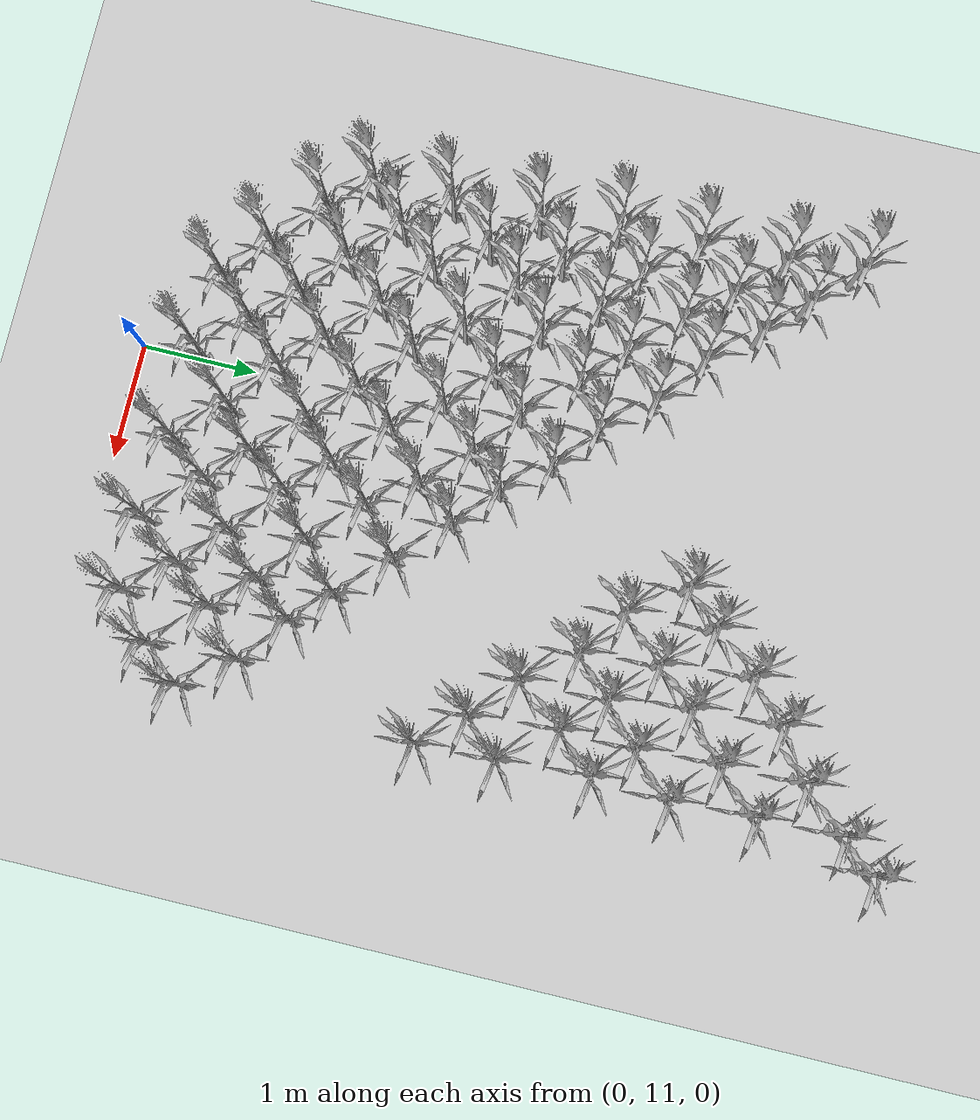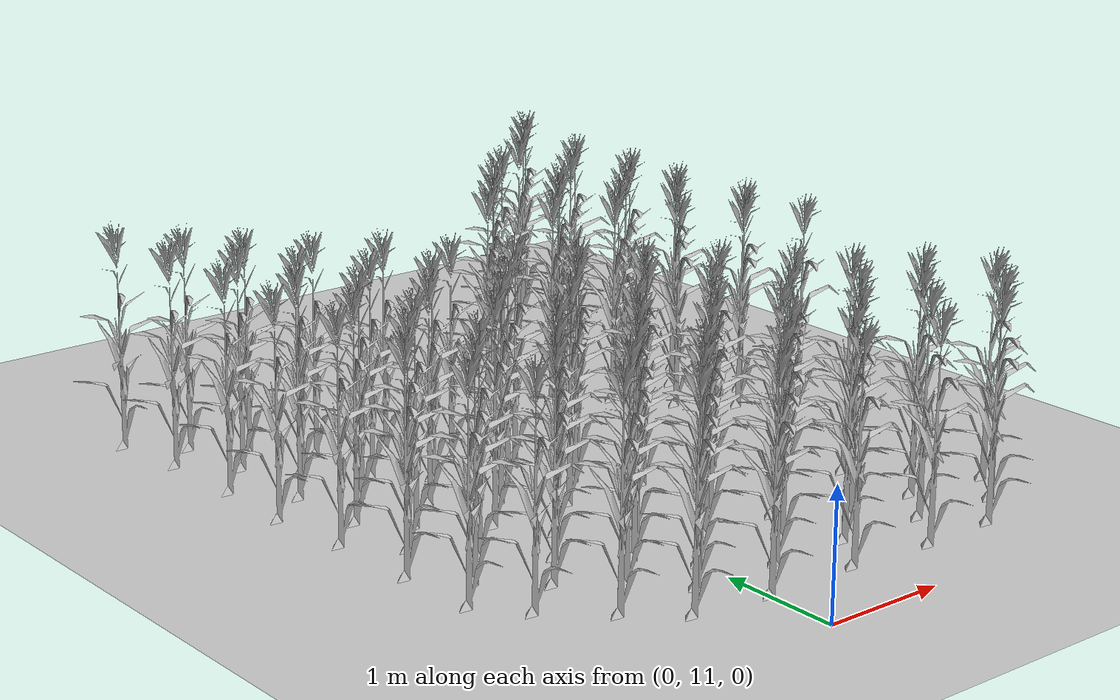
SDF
<sdf version="1.7">
 <world name="farmland_world">
  <model name="ground_plane">
   <static>1</static>
   <link name="link">
    <collision name="collision">
     <geometry><plane><normal>0 0 1</normal><size>40.0 40.0</size></plane></geometry>
     <surface><friction><ode><mu>100</mu><mu2>50</mu2></ode></friction></surface>
    </collision>
    <visual name="visual">
     <cast_shadows>0</cast_shadows>
     <geometry><plane><normal>0 0 1</normal><size>40.0 40.0</size></plane></geometry>
     <material>
      <script><uri>file://media/materials/scripts/gazebo.material</uri><name>Gazebo/Grey</name></script>
     </material>
    </visual>
   </link>
  </model>
  <model name="tree_3_326">
   <static>1</static>
   <link name="link">
    <collision name="collision">
     <geometry><mesh><uri>model://Corn_low_poly/corn.obj</uri><scale>1 1 1</scale></mesh></geometry>
     <surface><friction><ode><mu>100</mu><mu2>50</mu2></ode></friction></surface>
    </collision>
    <visual name="visual">
     <geometry><mesh><uri>model://Corn_low_poly/corn.obj</uri><scale>1 1 1</scale></mesh></geometry>
    </visual>
   </link>
   <pose>-0.6159914897354487 11.680217431769517 0 0 0 0</pose>
  </model>
  <model name="tree_3_327">
   <static>1</static>
   <link name="link">
    <collision name="collision">
     <geometry><mesh><uri>model://Corn_low_poly/corn.obj</uri><scale>1 1 1</scale></mesh></geometry>
     <surface><friction><ode><mu>100</mu><mu2>50</mu2></ode></friction></surface>
    </collision>
    <visual name="visual">
     <geometry><mesh><uri>model://Corn_low_poly/corn.obj</uri><scale>1 1 1</scale></mesh></geometry>
    </visual>
   </link>
   <pose>-0.9890234954285126 12.001630813378753 0 0 0 0</pose>
  </model>
  <model name="tree_3_328">
   <static>1</static>
   <link name="link">
    <collision name="collision">
     <geometry><mesh><uri>model://Corn_low_poly/corn.obj</uri><scale>1 1 1</scale></mesh></geometry>
     <surface><friction><ode><mu>100</mu><mu2>50</mu2></ode></friction></surface>
    </collision>
    <visual name="visual">
     <geometry><mesh><uri>model://Corn_low_poly/corn.obj</uri><scale>1 1 1</scale></mesh></geometry>
    </visual>
   </link>
   <pose>-1.4118398866824176 12.382378868817657 0 0 0 0</pose>
  </model>
  <model name="tree_3_329">
   <static>1</static>
   <link name="link">
    <collision name="collision">
     <geometry><mesh><uri>model://Corn_low_poly/corn.obj</uri><scale>1 1 1</scale></mesh></geometry>
     <surface><friction><ode><mu>100</mu><mu2>50</mu2></ode></friction></surface>
    </collision>
    <visual name="visual">
     <geometry><mesh><uri>model://Corn_low_poly/corn.obj</uri><scale>1 1 1</scale></mesh></geometry>
    </visual>
   </link>
   <pose>-1.6921558482962555 12.736218034763247 0 0 0 0</pose>
  </model>
  <model name="tree_3_370">
   <static>1</static>
   <link name="link">
    <collision name="collision">
     <geometry><mesh><uri>model://Corn_low_poly/corn.obj</uri><scale>1 1 1</scale></mesh></geometry>
     <surface><friction><ode><mu>100</mu><mu2>50</mu2></ode></friction></surface>
    </collision>
    <visual name="visual">
     <geometry><mesh><uri>model://Corn_low_poly/corn.obj</uri><scale>1 1 1</scale></mesh></geometry>
    </visual>
   </link>
   <pose>0.010287536532261998 11.59109692468479 0 0 0 0</pose>
  </model>
  <model name="tree_3_371">
   <static>1</static>
   <link name="link">
    <collision name="collision">
     <geometry><mesh><uri>model://Corn_low_poly/corn.obj</uri><scale>1 1 1</scale></mesh></geometry>
     <surface><friction><ode><mu>100</mu><mu2>50</mu2></ode></friction></surface>
    </collision>
    <visual name="visual">
     <geometry><mesh><uri>model://Corn_low_poly/corn.obj</uri><scale>1 1 1</scale></mesh></geometry>
    </visual>
   </link>
   <pose>-0.28463956660514067 12.014626489545961 0 0 0 0</pose>
  </model>
  <model name="tree_3_372">
   <static>1</static>
   <link name="link">
    <collision name="collision">
     <geometry><mesh><uri>model://Corn_low_poly/corn.obj</uri><scale>1 1 1</scale></mesh></geometry>
     <surface><friction><ode><mu>100</mu><mu2>50</mu2></ode></friction></surface>
    </collision>
    <visual name="visual">
     <geometry><mesh><uri>model://Corn_low_poly/corn.obj</uri><scale>1 1 1</scale></mesh></geometry>
    </visual>
   </link>
   <pose>-0.6369787297962994 12.342699216143531 0 0 0 0</pose>
  </model>
  <model name="tree_3_373">
   <static>1</static>
   <link name="link">
    <collision name="collision">
     <geometry><mesh><uri>model://Corn_low_poly/corn.obj</uri><scale>1 1 1</scale></mesh></geometry>
     <surface><friction><ode><mu>100</mu><mu2>50</mu2></ode></friction></surface>
    </collision>
    <visual name="visual">
     <geometry><mesh><uri>model://Corn_low_poly/corn.obj</uri><scale>1 1 1</scale></mesh></geometry>
    </visual>
   </link>
   <pose>-1.017438732129421 12.661966391335348 0 0 0 0</pose>
  </model>
  <model name="tree_3_374">
   <static>1</static>
   <link name="link">
    <collision name="collision">
     <geometry><mesh><uri>model://Corn_low_poly/corn.obj</uri><scale>1 1 1</scale></mesh></geometry>
     <surface><friction><ode><mu>100</mu><mu2>50</mu2></ode></friction></surface>
    </collision>
    <visual name="visual">
     <geometry><mesh><uri>model://Corn_low_poly/corn.obj</uri><scale>1 1 1</scale></mesh></geometry>
    </visual>
   </link>
   <pose>-1.4129287246045454 13.029988537906739 0 0 0 0</pose>
  </model>
  <model name="tree_3_375">
   <static>1</static>
   <link name="link">
    <collision name="collision">
     <geometry><mesh><uri>model://Corn_low_poly/corn.obj</uri><scale>1 1 1</scale></mesh></geometry>
     <surface><friction><ode><mu>100</mu><mu2>50</mu2></ode></friction></surface>
    </collision>
    <visual name="visual">
     <geometry><mesh><uri>model://Corn_low_poly/corn.obj</uri><scale>1 1 1</scale></mesh></geometry>
    </visual>
   </link>
   <pose>-1.7224924573897185 13.397468671116005 0 0 0 0</pose>
  </model>
  <model name="tree_3_414">
   <static>1</static>
   <link name="link">
    <collision name="collision">
     <geometry><mesh><uri>model://Corn_low_poly/corn.obj</uri><scale>1 1 1</scale></mesh></geometry>
     <surface><friction><ode><mu>100</mu><mu2>50</mu2></ode></friction></surface>
    </collision>
    <visual name="visual">
     <geometry><mesh><uri>model://Corn_low_poly/corn.obj</uri><scale>1 1 1</scale></mesh></geometry>
    </visual>
   </link>
   <pose>0.8001938802256726 11.584543198587747 0 0 0 0</pose>
  </model>
  <model name="tree_3_415">
   <static>1</static>
   <link name="link">
    <collision name="collision">
     <geometry><mesh><uri>model://Corn_low_poly/corn.obj</uri><scale>1 1 1</scale></mesh></geometry>
     <surface><friction><ode><mu>100</mu><mu2>50</mu2></ode></friction></surface>
    </collision>
    <visual name="visual">
     <geometry><mesh><uri>model://Corn_low_poly/corn.obj</uri><scale>1 1 1</scale></mesh></geometry>
    </visual>
   </link>
   <pose>0.4262494697378442 11.975883905332177 0 0 0 0</pose>
  </model>
  <model name="tree_3_416">
   <static>1</static>
   <link name="link">
    <collision name="collision">
     <geometry><mesh><uri>model://Corn_low_poly/corn.obj</uri><scale>1 1 1</scale></mesh></geometry>
     <surface><friction><ode><mu>100</mu><mu2>50</mu2></ode></friction></surface>
    </collision>
    <visual name="visual">
     <geometry><mesh><uri>model://Corn_low_poly/corn.obj</uri><scale>1 1 1</scale></mesh></geometry>
    </visual>
   </link>
   <pose>0.0023708934907775148 12.307366250514272 0 0 0 0</pose>
  </model>
  <model name="tree_3_417">
   <static>1</static>
   <link name="link">
    <collision name="collision">
     <geometry><mesh><uri>model://Corn_low_poly/corn.obj</uri><scale>1 1 1</scale></mesh></geometry>
     <surface><friction><ode><mu>100</mu><mu2>50</mu2></ode></friction></surface>
    </collision>
    <visual name="visual">
     <geometry><mesh><uri>model://Corn_low_poly/corn.obj</uri><scale>1 1 1</scale></mesh></geometry>
    </visual>
   </link>
   <pose>-0.29432599244462426 12.658529436605455 0 0 0 0</pose>
  </model>
  <model name="tree_3_418">
   <static>1</static>
   <link name="link">
    <collision name="collision">
     <geometry><mesh><uri>model://Corn_low_poly/corn.obj</uri><scale>1 1 1</scale></mesh></geometry>
     <surface><friction><ode><mu>100</mu><mu2>50</mu2></ode></friction></surface>
    </collision>
    <visual name="visual">
     <geometry><mesh><uri>model://Corn_low_poly/corn.obj</uri><scale>1 1 1</scale></mesh></geometry>
    </visual>
   </link>
   <pose>-0.7112974712343889 13.023271907194369 0 0 0 0</pose>
  </model>
  <model name="tree_3_419">
   <static>1</static>
   <link name="link">
    <collision name="collision">
     <geometry><mesh><uri>model://Corn_low_poly/corn.obj</uri><scale>1 1 1</scale></mesh></geometry>
     <surface><friction><ode><mu>100</mu><mu2>50</mu2></ode></friction></surface>
    </collision>
    <visual name="visual">
     <geometry><mesh><uri>model://Corn_low_poly/corn.obj</uri><scale>1 1 1</scale></mesh></geometry>
    </visual>
   </link>
   <pose>-1.1037884333144026 13.384269066660135 0 0 0 0</pose>
  </model>
  <model name="tree_3_420">
   <static>1</static>
   <link name="link">
    <collision name="collision">
     <geometry><mesh><uri>model://Corn_low_poly/corn.obj</uri><scale>1 1 1</scale></mesh></geometry>
     <surface><friction><ode><mu>100</mu><mu2>50</mu2></ode></friction></surface>
    </collision>
    <visual name="visual">
     <geometry><mesh><uri>model://Corn_low_poly/corn.obj</uri><scale>1 1 1</scale></mesh></geometry>
    </visual>
   </link>
   <pose>-1.414597317762616 13.793382301832116 0 0 0 0</pose>
  </model>
  <model name="tree_3_421">
   <static>1</static>
   <link name="link">
    <collision name="collision">
     <geometry><mesh><uri>model://Corn_low_poly/corn.obj</uri><scale>1 1 1</scale></mesh></geometry>
     <surface><friction><ode><mu>100</mu><mu2>50</mu2></ode></friction></surface>
    </collision>
    <visual name="visual">
     <geometry><mesh><uri>model://Corn_low_poly/corn.obj</uri><scale>1 1 1</scale></mesh></geometry>
    </visual>
   </link>
   <pose>-1.7481367978398707 14.156822416482086 0 0 0 0</pose>
  </model>
  <model name="tree_3_458">
   <static>1</static>
   <link name="link">
    <collision name="collision">
     <geometry><mesh><uri>model://Corn_low_poly/corn.obj</uri><scale>1 1 1</scale></mesh></geometry>
     <surface><friction><ode><mu>100</mu><mu2>50</mu2></ode></friction></surface>
    </collision>
    <visual name="visual">
     <geometry><mesh><uri>model://Corn_low_poly/corn.obj</uri><scale>1 1 1</scale></mesh></geometry>
    </visual>
   </link>
   <pose>1.5034296016191822 11.517823892175608 0 0 0 0</pose>
  </model>
  <model name="tree_3_459">
   <static>1</static>
   <link name="link">
    <collision name="collision">
     <geometry><mesh><uri>model://Corn_low_poly/corn.obj</uri><scale>1 1 1</scale></mesh></geometry>
     <surface><friction><ode><mu>100</mu><mu2>50</mu2></ode></friction></surface>
    </collision>
    <visual name="visual">
     <geometry><mesh><uri>model://Corn_low_poly/corn.obj</uri><scale>1 1 1</scale></mesh></geometry>
    </visual>
   </link>
   <pose>1.0846571910192582 11.954144643541778 0 0 0 0</pose>
  </model>
  <model name="tree_3_460">
   <static>1</static>
   <link name="link">
    <collision name="collision">
     <geometry><mesh><uri>model://Corn_low_poly/corn.obj</uri><scale>1 1 1</scale></mesh></geometry>
     <surface><friction><ode><mu>100</mu><mu2>50</mu2></ode></friction></surface>
    </collision>
    <visual name="visual">
     <geometry><mesh><uri>model://Corn_low_poly/corn.obj</uri><scale>1 1 1</scale></mesh></geometry>
    </visual>
   </link>
   <pose>0.775334976136647 12.272745347312874 0 0 0 0</pose>
  </model>
  <model name="tree_3_461">
   <static>1</static>
   <link name="link">
    <collision name="collision">
     <geometry><mesh><uri>model://Corn_low_poly/corn.obj</uri><scale>1 1 1</scale></mesh></geometry>
     <surface><friction><ode><mu>100</mu><mu2>50</mu2></ode></friction></surface>
    </collision>
    <visual name="visual">
     <geometry><mesh><uri>model://Corn_low_poly/corn.obj</uri><scale>1 1 1</scale></mesh></geometry>
    </visual>
   </link>
   <pose>0.3955211941019991 12.6731199798251 0 0 0 0</pose>
  </model>
  <model name="tree_3_462">
   <static>1</static>
   <link name="link">
    <collision name="collision">
     <geometry><mesh><uri>model://Corn_low_poly/corn.obj</uri><scale>1 1 1</scale></mesh></geometry>
     <surface><friction><ode><mu>100</mu><mu2>50</mu2></ode></friction></surface>
    </collision>
    <visual name="visual">
     <geometry><mesh><uri>model://Corn_low_poly/corn.obj</uri><scale>1 1 1</scale></mesh></geometry>
    </visual>
   </link>
   <pose>0.039334488339589024 13.016876013982255 0 0 0 0</pose>
  </model>
  <model name="tree_3_463">
   <static>1</static>
   <link name="link">
    <collision name="collision">
     <geometry><mesh><uri>model://Corn_low_poly/corn.obj</uri><scale>1 1 1</scale></mesh></geometry>
     <surface><friction><ode><mu>100</mu><mu2>50</mu2></ode></friction></surface>
    </collision>
    <visual name="visual">
     <geometry><mesh><uri>model://Corn_low_poly/corn.obj</uri><scale>1 1 1</scale></mesh></geometry>
    </visual>
   </link>
   <pose>-0.4132186261781491 13.370093568406078 0 0 0 0</pose>
  </model>
  <model name="tree_3_464">
   <static>1</static>
   <link name="link">
    <collision name="collision">
     <geometry><mesh><uri>model://Corn_low_poly/corn.obj</uri><scale>1 1 1</scale></mesh></geometry>
     <surface><friction><ode><mu>100</mu><mu2>50</mu2></ode></friction></surface>
    </collision>
    <visual name="visual">
     <geometry><mesh><uri>model://Corn_low_poly/corn.obj</uri><scale>1 1 1</scale></mesh></geometry>
    </visual>
   </link>
   <pose>-0.6782682979751039 13.750969651093932 0 0 0 0</pose>
  </model>
  <model name="tree_3_465">
   <static>1</static>
   <link name="link">
    <collision name="collision">
     <geometry><mesh><uri>model://Corn_low_poly/corn.obj</uri><scale>1 1 1</scale></mesh></geometry>
     <surface><friction><ode><mu>100</mu><mu2>50</mu2></ode></friction></surface>
    </collision>
    <visual name="visual">
     <geometry><mesh><uri>model://Corn_low_poly/corn.obj</uri><scale>1 1 1</scale></mesh></geometry>
    </visual>
   </link>
   <pose>-1.1248794120916252 14.101495868032165 0 0 0 0</pose>
  </model>
  <model name="tree_3_466">
   <static>1</static>
   <link name="link">
    <collision name="collision">
     <geometry><mesh><uri>model://Corn_low_poly/corn.obj</uri><scale>1 1 1</scale></mesh></geometry>
     <surface><friction><ode><mu>100</mu><mu2>50</mu2></ode></friction></surface>
    </collision>
    <visual name="visual">
     <geometry><mesh><uri>model://Corn_low_poly/corn.obj</uri><scale>1 1 1</scale></mesh></geometry>
    </visual>
   </link>
   <pose>-1.4199158666461857 14.433036442992657 0 0 0 0</pose>
  </model>
  <model name="tree_3_467">
   <static>1</static>
   <link name="link">
    <collision name="collision">
     <geometry><mesh><uri>model://Corn_low_poly/corn.obj</uri><scale>1 1 1</scale></mesh></geometry>
     <surface><friction><ode><mu>100</mu><mu2>50</mu2></ode></friction></surface>
    </collision>
    <visual name="visual">
     <geometry><mesh><uri>model://Corn_low_poly/corn.obj</uri><scale>1 1 1</scale></mesh></geometry>
    </visual>
   </link>
   <pose>-1.824638998192062 14.832478031824156 0 0 0 0</pose>
  </model>
  <model name="tree_3_502">
   <static>1</static>
   <link name="link">
    <collision name="collision">
     <geometry><mesh><uri>model://Corn_low_poly/corn.obj</uri><scale>1 1 1</scale></mesh></geometry>
     <surface><friction><ode><mu>100</mu><mu2>50</mu2></ode></friction></surface>
    </collision>
    <visual name="visual">
     <geometry><mesh><uri>model://Corn_low_poly/corn.obj</uri><scale>1 1 1</scale></mesh></geometry>
    </visual>
   </link>
   <pose>2.1421573945072017 11.532903663875013 0 0 0 0</pose>
  </model>
  <model name="tree_3_503">
   <static>1</static>
   <link name="link">
    <collision name="collision">
     <geometry><mesh><uri>model://Corn_low_poly/corn.obj</uri><scale>1 1 1</scale></mesh></geometry>
     <surface><friction><ode><mu>100</mu><mu2>50</mu2></ode></friction></surface>
    </collision>
    <visual name="visual">
     <geometry><mesh><uri>model://Corn_low_poly/corn.obj</uri><scale>1 1 1</scale></mesh></geometry>
    </visual>
   </link>
   <pose>1.822172042115392 11.91529433579827 0 0 0 0</pose>
  </model>
  <model name="tree_3_504">
   <static>1</static>
   <link name="link">
    <collision name="collision">
     <geometry><mesh><uri>model://Corn_low_poly/corn.obj</uri><scale>1 1 1</scale></mesh></geometry>
     <surface><friction><ode><mu>100</mu><mu2>50</mu2></ode></friction></surface>
    </collision>
    <visual name="visual">
     <geometry><mesh><uri>model://Corn_low_poly/corn.obj</uri><scale>1 1 1</scale></mesh></geometry>
    </visual>
   </link>
   <pose>1.452076636833405 12.249702156134537 0 0 0 0</pose>
  </model>
  <model name="tree_3_505">
   <static>1</static>
   <link name="link">
    <collision name="collision">
     <geometry><mesh><uri>model://Corn_low_poly/corn.obj</uri><scale>1 1 1</scale></mesh></geometry>
     <surface><friction><ode><mu>100</mu><mu2>50</mu2></ode></friction></surface>
    </collision>
    <visual name="visual">
     <geometry><mesh><uri>model://Corn_low_poly/corn.obj</uri><scale>1 1 1</scale></mesh></geometry>
    </visual>
   </link>
   <pose>1.0241584675379398 12.62303748326177 0 0 0 0</pose>
  </model>
  <model name="tree_3_506">
   <static>1</static>
   <link name="link">
    <collision name="collision">
     <geometry><mesh><uri>model://Corn_low_poly/corn.obj</uri><scale>1 1 1</scale></mesh></geometry>
     <surface><friction><ode><mu>100</mu><mu2>50</mu2></ode></friction></surface>
    </collision>
    <visual name="visual">
     <geometry><mesh><uri>model://Corn_low_poly/corn.obj</uri><scale>1 1 1</scale></mesh></geometry>
    </visual>
   </link>
   <pose>0.7109389303994903 12.959190232195107 0 0 0 0</pose>
  </model>
  <model name="tree_3_507">
   <static>1</static>
   <link name="link">
    <collision name="collision">
     <geometry><mesh><uri>model://Corn_low_poly/corn.obj</uri><scale>1 1 1</scale></mesh></geometry>
     <surface><friction><ode><mu>100</mu><mu2>50</mu2></ode></friction></surface>
    </collision>
    <visual name="visual">
     <geometry><mesh><uri>model://Corn_low_poly/corn.obj</uri><scale>1 1 1</scale></mesh></geometry>
    </visual>
   </link>
   <pose>0.30180475302765986 13.355495992437293 0 0 0 0</pose>
  </model>
  <model name="tree_3_508">
   <static>1</static>
   <link name="link">
    <collision name="collision">
     <geometry><mesh><uri>model://Corn_low_poly/corn.obj</uri><scale>1 1 1</scale></mesh></geometry>
     <surface><friction><ode><mu>100</mu><mu2>50</mu2></ode></friction></surface>
    </collision>
    <visual name="visual">
     <geometry><mesh><uri>model://Corn_low_poly/corn.obj</uri><scale>1 1 1</scale></mesh></geometry>
    </visual>
   </link>
   <pose>0.014706866242820443 13.743535312180269 0 0 0 0</pose>
  </model>
  <model name="tree_3_509">
   <static>1</static>
   <link name="link">
    <collision name="collision">
     <geometry><mesh><uri>model://Corn_low_poly/corn.obj</uri><scale>1 1 1</scale></mesh></geometry>
     <surface><friction><ode><mu>100</mu><mu2>50</mu2></ode></friction></surface>
    </collision>
    <visual name="visual">
     <geometry><mesh><uri>model://Corn_low_poly/corn.obj</uri><scale>1 1 1</scale></mesh></geometry>
    </visual>
   </link>
   <pose>-0.3484834164229018 14.096321077568588 0 0 0 0</pose>
  </model>
  <model name="tree_3_510">
   <static>1</static>
   <link name="link">
    <collision name="collision">
     <geometry><mesh><uri>model://Corn_low_poly/corn.obj</uri><scale>1 1 1</scale></mesh></geometry>
     <surface><friction><ode><mu>100</mu><mu2>50</mu2></ode></friction></surface>
    </collision>
    <visual name="visual">
     <geometry><mesh><uri>model://Corn_low_poly/corn.obj</uri><scale>1 1 1</scale></mesh></geometry>
    </visual>
   </link>
   <pose>-0.786927035958017 14.390955471815523 0 0 0 0</pose>
  </model>
  <model name="tree_3_511">
   <static>1</static>
   <link name="link">
    <collision name="collision">
     <geometry><mesh><uri>model://Corn_low_poly/corn.obj</uri><scale>1 1 1</scale></mesh></geometry>
     <surface><friction><ode><mu>100</mu><mu2>50</mu2></ode></friction></surface>
    </collision>
    <visual name="visual">
     <geometry><mesh><uri>model://Corn_low_poly/corn.obj</uri><scale>1 1 1</scale></mesh></geometry>
    </visual>
   </link>
   <pose>-1.0983432946171343 14.82376691203676 0 0 0 0</pose>
  </model>
  <model name="tree_3_512">
   <static>1</static>
   <link name="link">
    <collision name="collision">
     <geometry><mesh><uri>model://Corn_low_poly/corn.obj</uri><scale>1 1 1</scale></mesh></geometry>
     <surface><friction><ode><mu>100</mu><mu2>50</mu2></ode></friction></surface>
    </collision>
    <visual name="visual">
     <geometry><mesh><uri>model://Corn_low_poly/corn.obj</uri><scale>1 1 1</scale></mesh></geometry>
    </visual>
   </link>
   <pose>-1.4620173127776088 15.100944774924221 0 0 0 0</pose>
  </model>
  <model name="tree_3_513">
   <static>1</static>
   <link name="link">
    <collision name="collision">
     <geometry><mesh><uri>model://Corn_low_poly/corn.obj</uri><scale>1 1 1</scale></mesh></geometry>
     <surface><friction><ode><mu>100</mu><mu2>50</mu2></ode></friction></surface>
    </collision>
    <visual name="visual">
     <geometry><mesh><uri>model://Corn_low_poly/corn.obj</uri><scale>1 1 1</scale></mesh></geometry>
    </visual>
   </link>
   <pose>-1.808006717191148 15.524565194988822 0 0 0 0</pose>
  </model>
  <model name="tree_3_547">
   <static>1</static>
   <link name="link">
    <collision name="collision">
     <geometry><mesh><uri>model://Corn_low_poly/corn.obj</uri><scale>1 1 1</scale></mesh></geometry>
     <surface><friction><ode><mu>100</mu><mu2>50</mu2></ode></friction></surface>
    </collision>
    <visual name="visual">
     <geometry><mesh><uri>model://Corn_low_poly/corn.obj</uri><scale>1 1 1</scale></mesh></geometry>
    </visual>
   </link>
   <pose>2.520323327306591 11.84290591334607 0 0 0 0</pose>
  </model>
  <model name="tree_3_548">
   <static>1</static>
   <link name="link">
    <collision name="collision">
     <geometry><mesh><uri>model://Corn_low_poly/corn.obj</uri><scale>1 1 1</scale></mesh></geometry>
     <surface><friction><ode><mu>100</mu><mu2>50</mu2></ode></friction></surface>
    </collision>
    <visual name="visual">
     <geometry><mesh><uri>model://Corn_low_poly/corn.obj</uri><scale>1 1 1</scale></mesh></geometry>
    </visual>
   </link>
   <pose>2.107352120620186 12.260800092319995 0 0 0 0</pose>
  </model>
  <model name="tree_3_549">
   <static>1</static>
   <link name="link">
    <collision name="collision">
     <geometry><mesh><uri>model://Corn_low_poly/corn.obj</uri><scale>1 1 1</scale></mesh></geometry>
     <surface><friction><ode><mu>100</mu><mu2>50</mu2></ode></friction></surface>
    </collision>
    <visual name="visual">
     <geometry><mesh><uri>model://Corn_low_poly/corn.obj</uri><scale>1 1 1</scale></mesh></geometry>
    </visual>
   </link>
   <pose>1.7931164428658382 12.586424669009618 0 0 0 0</pose>
  </model>
  <model name="tree_3_550">
   <static>1</static>
   <link name="link">
    <collision name="collision">
     <geometry><mesh><uri>model://Corn_low_poly/corn.obj</uri><scale>1 1 1</scale></mesh></geometry>
     <surface><friction><ode><mu>100</mu><mu2>50</mu2></ode></friction></surface>
    </collision>
    <visual name="visual">
     <geometry><mesh><uri>model://Corn_low_poly/corn.obj</uri><scale>1 1 1</scale></mesh></geometry>
    </visual>
   </link>
   <pose>1.3828792636723293 12.90220754288202 0 0 0 0</pose>
  </model>
  <model name="tree_3_551">
   <static>1</static>
   <link name="link">
    <collision name="collision">
     <geometry><mesh><uri>model://Corn_low_poly/corn.obj</uri><scale>1 1 1</scale></mesh></geometry>
     <surface><friction><ode><mu>100</mu><mu2>50</mu2></ode></friction></surface>
    </collision>
    <visual name="visual">
     <geometry><mesh><uri>model://Corn_low_poly/corn.obj</uri><scale>1 1 1</scale></mesh></geometry>
    </visual>
   </link>
   <pose>0.98785025784898 13.313039985991699 0 0 0 0</pose>
  </model>
  <model name="tree_3_552">
   <static>1</static>
   <link name="link">
    <collision name="collision">
     <geometry><mesh><uri>model://Corn_low_poly/corn.obj</uri><scale>1 1 1</scale></mesh></geometry>
     <surface><friction><ode><mu>100</mu><mu2>50</mu2></ode></friction></surface>
    </collision>
    <visual name="visual">
     <geometry><mesh><uri>model://Corn_low_poly/corn.obj</uri><scale>1 1 1</scale></mesh></geometry>
    </visual>
   </link>
   <pose>0.7115378925690374 13.705147927465058 0 0 0 0</pose>
  </model>
  <model name="tree_3_553">
   <static>1</static>
   <link name="link">
    <collision name="collision">
     <geometry><mesh><uri>model://Corn_low_poly/corn.obj</uri><scale>1 1 1</scale></mesh></geometry>
     <surface><friction><ode><mu>100</mu><mu2>50</mu2></ode></friction></surface>
    </collision>
    <visual name="visual">
     <geometry><mesh><uri>model://Corn_low_poly/corn.obj</uri><scale>1 1 1</scale></mesh></geometry>
    </visual>
   </link>
   <pose>0.3493150393470378 14.077418240656824 0 0 0 0</pose>
  </model>
  <model name="tree_3_554">
   <static>1</static>
   <link name="link">
    <collision name="collision">
     <geometry><mesh><uri>model://Corn_low_poly/corn.obj</uri><scale>1 1 1</scale></mesh></geometry>
     <surface><friction><ode><mu>100</mu><mu2>50</mu2></ode></friction></surface>
    </collision>
    <visual name="visual">
     <geometry><mesh><uri>model://Corn_low_poly/corn.obj</uri><scale>1 1 1</scale></mesh></geometry>
    </visual>
   </link>
   <pose>-0.06512362424186842 14.379765091656862 0 0 0 0</pose>
  </model>
  <model name="tree_3_555">
   <static>1</static>
   <link name="link">
    <collision name="collision">
     <geometry><mesh><uri>model://Corn_low_poly/corn.obj</uri><scale>1 1 1</scale></mesh></geometry>
     <surface><friction><ode><mu>100</mu><mu2>50</mu2></ode></friction></surface>
    </collision>
    <visual name="visual">
     <geometry><mesh><uri>model://Corn_low_poly/corn.obj</uri><scale>1 1 1</scale></mesh></geometry>
    </visual>
   </link>
   <pose>-0.44535960716128314 14.809891678430468 0 0 0 0</pose>
  </model>
  <model name="tree_3_556">
   <static>1</static>
   <link name="link">
    <collision name="collision">
     <geometry><mesh><uri>model://Corn_low_poly/corn.obj</uri><scale>1 1 1</scale></mesh></geometry>
     <surface><friction><ode><mu>100</mu><mu2>50</mu2></ode></friction></surface>
    </collision>
    <visual name="visual">
     <geometry><mesh><uri>model://Corn_low_poly/corn.obj</uri><scale>1 1 1</scale></mesh></geometry>
    </visual>
   </link>
   <pose>-0.7884652108904364 15.125059771629514 0 0 0 0</pose>
  </model>
  <model name="tree_3_557">
   <static>1</static>
   <link name="link">
    <collision name="collision">
     <geometry><mesh><uri>model://Corn_low_poly/corn.obj</uri><scale>1 1 1</scale></mesh></geometry>
     <surface><friction><ode><mu>100</mu><mu2>50</mu2></ode></friction></surface>
    </collision>
    <visual name="visual">
     <geometry><mesh><uri>model://Corn_low_poly/corn.obj</uri><scale>1 1 1</scale></mesh></geometry>
    </visual>
   </link>
   <pose>-1.1646582579582574 15.52164699867011 0 0 0 0</pose>
  </model>
  <model name="tree_3_558">
   <static>1</static>
   <link name="link">
    <collision name="collision">
     <geometry><mesh><uri>model://Corn_low_poly/corn.obj</uri><scale>1 1 1</scale></mesh></geometry>
     <surface><friction><ode><mu>100</mu><mu2>50</mu2></ode></friction></surface>
    </collision>
    <visual name="visual">
     <geometry><mesh><uri>model://Corn_low_poly/corn.obj</uri><scale>1 1 1</scale></mesh></geometry>
    </visual>
   </link>
   <pose>-1.4679331444789137 15.883058122409324 0 0 0 0</pose>
  </model>
  <model name="tree_3_559">
   <static>1</static>
   <link name="link">
    <collision name="collision">
     <geometry><mesh><uri>model://Corn_low_poly/corn.obj</uri><scale>1 1 1</scale></mesh></geometry>
     <surface><friction><ode><mu>100</mu><mu2>50</mu2></ode></friction></surface>
    </collision>
    <visual name="visual">
     <geometry><mesh><uri>model://Corn_low_poly/corn.obj</uri><scale>1 1 1</scale></mesh></geometry>
    </visual>
   </link>
   <pose>-1.8341145241088217 16.255258469678196 0 0 0 0</pose>
  </model>
  <model name="tree_3_592">
   <static>1</static>
   <link name="link">
    <collision name="collision">
     <geometry><mesh><uri>model://Corn_low_poly/corn.obj</uri><scale>1 1 1</scale></mesh></geometry>
     <surface><friction><ode><mu>100</mu><mu2>50</mu2></ode></friction></surface>
    </collision>
    <visual name="visual">
     <geometry><mesh><uri>model://Corn_low_poly/corn.obj</uri><scale>1 1 1</scale></mesh></geometry>
    </visual>
   </link>
   <pose>2.7953666174419545 12.159526482899233 0 0 0 0</pose>
  </model>
  <model name="tree_3_593">
   <static>1</static>
   <link name="link">
    <collision name="collision">
     <geometry><mesh><uri>model://Corn_low_poly/corn.obj</uri><scale>1 1 1</scale></mesh></geometry>
     <surface><friction><ode><mu>100</mu><mu2>50</mu2></ode></friction></surface>
    </collision>
    <visual name="visual">
     <geometry><mesh><uri>model://Corn_low_poly/corn.obj</uri><scale>1 1 1</scale></mesh></geometry>
    </visual>
   </link>
   <pose>2.480979090073638 12.594392847895342 0 0 0 0</pose>
  </model>
  <model name="tree_3_594">
   <static>1</static>
   <link name="link">
    <collision name="collision">
     <geometry><mesh><uri>model://Corn_low_poly/corn.obj</uri><scale>1 1 1</scale></mesh></geometry>
     <surface><friction><ode><mu>100</mu><mu2>50</mu2></ode></friction></surface>
    </collision>
    <visual name="visual">
     <geometry><mesh><uri>model://Corn_low_poly/corn.obj</uri><scale>1 1 1</scale></mesh></geometry>
    </visual>
   </link>
   <pose>2.0656501035756465 12.922662210115298 0 0 0 0</pose>
  </model>
  <model name="tree_3_595">
   <static>1</static>
   <link name="link">
    <collision name="collision">
     <geometry><mesh><uri>model://Corn_low_poly/corn.obj</uri><scale>1 1 1</scale></mesh></geometry>
     <surface><friction><ode><mu>100</mu><mu2>50</mu2></ode></friction></surface>
    </collision>
    <visual name="visual">
     <geometry><mesh><uri>model://Corn_low_poly/corn.obj</uri><scale>1 1 1</scale></mesh></geometry>
    </visual>
   </link>
   <pose>1.7742026884244908 13.237261686469319 0 0 0 0</pose>
  </model>
  <model name="tree_3_596">
   <static>1</static>
   <link name="link">
    <collision name="collision">
     <geometry><mesh><uri>model://Corn_low_poly/corn.obj</uri><scale>1 1 1</scale></mesh></geometry>
     <surface><friction><ode><mu>100</mu><mu2>50</mu2></ode></friction></surface>
    </collision>
    <visual name="visual">
     <geometry><mesh><uri>model://Corn_low_poly/corn.obj</uri><scale>1 1 1</scale></mesh></geometry>
    </visual>
   </link>
   <pose>1.3721634364739053 13.63585390003232 0 0 0 0</pose>
  </model>
  <model name="tree_3_597">
   <static>1</static>
   <link name="link">
    <collision name="collision">
     <geometry><mesh><uri>model://Corn_low_poly/corn.obj</uri><scale>1 1 1</scale></mesh></geometry>
     <surface><friction><ode><mu>100</mu><mu2>50</mu2></ode></friction></surface>
    </collision>
    <visual name="visual">
     <geometry><mesh><uri>model://Corn_low_poly/corn.obj</uri><scale>1 1 1</scale></mesh></geometry>
    </visual>
   </link>
   <pose>0.9739341650108994 14.040897607444288 0 0 0 0</pose>
  </model>
  <model name="tree_3_598">
   <static>1</static>
   <link name="link">
    <collision name="collision">
     <geometry><mesh><uri>model://Corn_low_poly/corn.obj</uri><scale>1 1 1</scale></mesh></geometry>
     <surface><friction><ode><mu>100</mu><mu2>50</mu2></ode></friction></surface>
    </collision>
    <visual name="visual">
     <geometry><mesh><uri>model://Corn_low_poly/corn.obj</uri><scale>1 1 1</scale></mesh></geometry>
    </visual>
   </link>
   <pose>0.6034786388100996 14.35786834116618 0 0 0 0</pose>
  </model>
  <model name="tree_3_599">
   <static>1</static>
   <link name="link">
    <collision name="collision">
     <geometry><mesh><uri>model://Corn_low_poly/corn.obj</uri><scale>1 1 1</scale></mesh></geometry>
     <surface><friction><ode><mu>100</mu><mu2>50</mu2></ode></friction></surface>
    </collision>
    <visual name="visual">
     <geometry><mesh><uri>model://Corn_low_poly/corn.obj</uri><scale>1 1 1</scale></mesh></geometry>
    </visual>
   </link>
   <pose>0.29492863555951343 14.742675814250022 0 0 0 0</pose>
  </model>
  <model name="tree_3_600">
   <static>1</static>
   <link name="link">
    <collision name="collision">
     <geometry><mesh><uri>model://Corn_low_poly/corn.obj</uri><scale>1 1 1</scale></mesh></geometry>
     <surface><friction><ode><mu>100</mu><mu2>50</mu2></ode></friction></surface>
    </collision>
    <visual name="visual">
     <geometry><mesh><uri>model://Corn_low_poly/corn.obj</uri><scale>1 1 1</scale></mesh></geometry>
    </visual>
   </link>
   <pose>-0.09258932401196185 15.045450573059702 0 0 0 0</pose>
  </model>
  <model name="tree_3_601">
   <static>1</static>
   <link name="link">
    <collision name="collision">
     <geometry><mesh><uri>model://Corn_low_poly/corn.obj</uri><scale>1 1 1</scale></mesh></geometry>
     <surface><friction><ode><mu>100</mu><mu2>50</mu2></ode></friction></surface>
    </collision>
    <visual name="visual">
     <geometry><mesh><uri>model://Corn_low_poly/corn.obj</uri><scale>1 1 1</scale></mesh></geometry>
    </visual>
   </link>
   <pose>-0.4297918333683539 15.453182590480978 0 0 0 0</pose>
  </model>
  <model name="tree_3_602">
   <static>1</static>
   <link name="link">
    <collision name="collision">
     <geometry><mesh><uri>model://Corn_low_poly/corn.obj</uri><scale>1 1 1</scale></mesh></geometry>
     <surface><friction><ode><mu>100</mu><mu2>50</mu2></ode></friction></surface>
    </collision>
    <visual name="visual">
     <geometry><mesh><uri>model://Corn_low_poly/corn.obj</uri><scale>1 1 1</scale></mesh></geometry>
    </visual>
   </link>
   <pose>-0.8612671383293514 15.774762492142507 0 0 0 0</pose>
  </model>
  <model name="tree_3_603">
   <static>1</static>
   <link name="link">
    <collision name="collision">
     <geometry><mesh><uri>model://Corn_low_poly/corn.obj</uri><scale>1 1 1</scale></mesh></geometry>
     <surface><friction><ode><mu>100</mu><mu2>50</mu2></ode></friction></surface>
    </collision>
    <visual name="visual">
     <geometry><mesh><uri>model://Corn_low_poly/corn.obj</uri><scale>1 1 1</scale></mesh></geometry>
    </visual>
   </link>
   <pose>-1.2122600355350284 16.18496865221227 0 0 0 0</pose>
  </model>
  <model name="tree_3_604">
   <static>1</static>
   <link name="link">
    <collision name="collision">
     <geometry><mesh><uri>model://Corn_low_poly/corn.obj</uri><scale>1 1 1</scale></mesh></geometry>
     <surface><friction><ode><mu>100</mu><mu2>50</mu2></ode></friction></surface>
    </collision>
    <visual name="visual">
     <geometry><mesh><uri>model://Corn_low_poly/corn.obj</uri><scale>1 1 1</scale></mesh></geometry>
    </visual>
   </link>
   <pose>-1.5492259110325852 16.51680273887625 0 0 0 0</pose>
  </model>
  <model name="tree_3_605">
   <static>1</static>
   <link name="link">
    <collision name="collision">
     <geometry><mesh><uri>model://Corn_low_poly/corn.obj</uri><scale>1 1 1</scale></mesh></geometry>
     <surface><friction><ode><mu>100</mu><mu2>50</mu2></ode></friction></surface>
    </collision>
    <visual name="visual">
     <geometry><mesh><uri>model://Corn_low_poly/corn.obj</uri><scale>1 1 1</scale></mesh></geometry>
    </visual>
   </link>
   <pose>-1.9240519256810853 16.88474644981251 0 0 0 0</pose>
  </model>
  <model name="tree_3_648">
   <static>1</static>
   <link name="link">
    <collision name="collision">
     <geometry><mesh><uri>model://Corn_low_poly/corn.obj</uri><scale>1 1 1</scale></mesh></geometry>
     <surface><friction><ode><mu>100</mu><mu2>50</mu2></ode></friction></surface>
    </collision>
    <visual name="visual">
     <geometry><mesh><uri>model://Corn_low_poly/corn.obj</uri><scale>1 1 1</scale></mesh></geometry>
    </visual>
   </link>
   <pose>2.8024461170890547 14.164433723064864 0 0 0 0</pose>
  </model>
  <model name="tree_3_649">
   <static>1</static>
   <link name="link">
    <collision name="collision">
     <geometry><mesh><uri>model://Corn_low_poly/corn.obj</uri><scale>1 1 1</scale></mesh></geometry>
     <surface><friction><ode><mu>100</mu><mu2>50</mu2></ode></friction></surface>
    </collision>
    <visual name="visual">
     <geometry><mesh><uri>model://Corn_low_poly/corn.obj</uri><scale>1 1 1</scale></mesh></geometry>
    </visual>
   </link>
   <pose>2.482608783239836 14.537101615690705 0 0 0 0</pose>
  </model>
  <model name="tree_3_650">
   <static>1</static>
   <link name="link">
    <collision name="collision">
     <geometry><mesh><uri>model://Corn_low_poly/corn.obj</uri><scale>1 1 1</scale></mesh></geometry>
     <surface><friction><ode><mu>100</mu><mu2>50</mu2></ode></friction></surface>
    </collision>
    <visual name="visual">
     <geometry><mesh><uri>model://Corn_low_poly/corn.obj</uri><scale>1 1 1</scale></mesh></geometry>
    </visual>
   </link>
   <pose>2.098816781504309 14.87301044468724 0 0 0 0</pose>
  </model>
  <model name="tree_3_651">
   <static>1</static>
   <link name="link">
    <collision name="collision">
     <geometry><mesh><uri>model://Corn_low_poly/corn.obj</uri><scale>1 1 1</scale></mesh></geometry>
     <surface><friction><ode><mu>100</mu><mu2>50</mu2></ode></friction></surface>
    </collision>
    <visual name="visual">
     <geometry><mesh><uri>model://Corn_low_poly/corn.obj</uri><scale>1 1 1</scale></mesh></geometry>
    </visual>
   </link>
   <pose>1.7716965893032075 15.300263681417308 0 0 0 0</pose>
  </model>
  <model name="tree_3_652">
   <static>1</static>
   <link name="link">
    <collision name="collision">
     <geometry><mesh><uri>model://Corn_low_poly/corn.obj</uri><scale>1 1 1</scale></mesh></geometry>
     <surface><friction><ode><mu>100</mu><mu2>50</mu2></ode></friction></surface>
    </collision>
    <visual name="visual">
     <geometry><mesh><uri>model://Corn_low_poly/corn.obj</uri><scale>1 1 1</scale></mesh></geometry>
    </visual>
   </link>
   <pose>1.3579022483567225 15.591617286511546 0 0 0 0</pose>
  </model>
  <model name="tree_3_653">
   <static>1</static>
   <link name="link">
    <collision name="collision">
     <geometry><mesh><uri>model://Corn_low_poly/corn.obj</uri><scale>1 1 1</scale></mesh></geometry>
     <surface><friction><ode><mu>100</mu><mu2>50</mu2></ode></friction></surface>
    </collision>
    <visual name="visual">
     <geometry><mesh><uri>model://Corn_low_poly/corn.obj</uri><scale>1 1 1</scale></mesh></geometry>
    </visual>
   </link>
   <pose>1.0445277773992148 16.048204825350204 0 0 0 0</pose>
  </model>
  <model name="tree_3_693">
   <static>1</static>
   <link name="link">
    <collision name="collision">
     <geometry><mesh><uri>model://Corn_low_poly/corn.obj</uri><scale>1 1 1</scale></mesh></geometry>
     <surface><friction><ode><mu>100</mu><mu2>50</mu2></ode></friction></surface>
    </collision>
    <visual name="visual">
     <geometry><mesh><uri>model://Corn_low_poly/corn.obj</uri><scale>1 1 1</scale></mesh></geometry>
    </visual>
   </link>
   <pose>2.780621210591956 14.832064801985293 0 0 0 0</pose>
  </model>
  <model name="tree_3_694">
   <static>1</static>
   <link name="link">
    <collision name="collision">
     <geometry><mesh><uri>model://Corn_low_poly/corn.obj</uri><scale>1 1 1</scale></mesh></geometry>
     <surface><friction><ode><mu>100</mu><mu2>50</mu2></ode></friction></surface>
    </collision>
    <visual name="visual">
     <geometry><mesh><uri>model://Corn_low_poly/corn.obj</uri><scale>1 1 1</scale></mesh></geometry>
    </visual>
   </link>
   <pose>2.415041362899015 15.28222895173171 0 0 0 0</pose>
  </model>
  <model name="tree_3_695">
   <static>1</static>
   <link name="link">
    <collision name="collision">
     <geometry><mesh><uri>model://Corn_low_poly/corn.obj</uri><scale>1 1 1</scale></mesh></geometry>
     <surface><friction><ode><mu>100</mu><mu2>50</mu2></ode></friction></surface>
    </collision>
    <visual name="visual">
     <geometry><mesh><uri>model://Corn_low_poly/corn.obj</uri><scale>1 1 1</scale></mesh></geometry>
    </visual>
   </link>
   <pose>2.0863617406559047 15.610357408303386 0 0 0 0</pose>
  </model>
  <model name="tree_3_696">
   <static>1</static>
   <link name="link">
    <collision name="collision">
     <geometry><mesh><uri>model://Corn_low_poly/corn.obj</uri><scale>1 1 1</scale></mesh></geometry>
     <surface><friction><ode><mu>100</mu><mu2>50</mu2></ode></friction></surface>
    </collision>
    <visual name="visual">
     <geometry><mesh><uri>model://Corn_low_poly/corn.obj</uri><scale>1 1 1</scale></mesh></geometry>
    </visual>
   </link>
   <pose>1.7131066838708302 15.951996541197751 0 0 0 0</pose>
  </model>
  <model name="tree_3_697">
   <static>1</static>
   <link name="link">
    <collision name="collision">
     <geometry><mesh><uri>model://Corn_low_poly/corn.obj</uri><scale>1 1 1</scale></mesh></geometry>
     <surface><friction><ode><mu>100</mu><mu2>50</mu2></ode></friction></surface>
    </collision>
    <visual name="visual">
     <geometry><mesh><uri>model://Corn_low_poly/corn.obj</uri><scale>1 1 1</scale></mesh></geometry>
    </visual>
   </link>
   <pose>1.3177823826753274 16.327599450442268 0 0 0 0</pose>
  </model>
  <model name="tree_3_737">
   <static>1</static>
   <link name="link">
    <collision name="collision">
     <geometry><mesh><uri>model://Corn_low_poly/corn.obj</uri><scale>1 1 1</scale></mesh></geometry>
     <surface><friction><ode><mu>100</mu><mu2>50</mu2></ode></friction></surface>
    </collision>
    <visual name="visual">
     <geometry><mesh><uri>model://Corn_low_poly/corn.obj</uri><scale>1 1 1</scale></mesh></geometry>
    </visual>
   </link>
   <pose>2.7216981784853274 15.603939073114958 0 0 0 0</pose>
  </model>
  <model name="tree_3_738">
   <static>1</static>
   <link name="link">
    <collision name="collision">
     <geometry><mesh><uri>model://Corn_low_poly/corn.obj</uri><scale>1 1 1</scale></mesh></geometry>
     <surface><friction><ode><mu>100</mu><mu2>50</mu2></ode></friction></surface>
    </collision>
    <visual name="visual">
     <geometry><mesh><uri>model://Corn_low_poly/corn.obj</uri><scale>1 1 1</scale></mesh></geometry>
    </visual>
   </link>
   <pose>2.4218194589459747 15.911337970686342 0 0 0 0</pose>
  </model>
  <model name="tree_3_739">
   <static>1</static>
   <link name="link">
    <collision name="collision">
     <geometry><mesh><uri>model://Corn_low_poly/corn.obj</uri><scale>1 1 1</scale></mesh></geometry>
     <surface><friction><ode><mu>100</mu><mu2>50</mu2></ode></friction></surface>
    </collision>
    <visual name="visual">
     <geometry><mesh><uri>model://Corn_low_poly/corn.obj</uri><scale>1 1 1</scale></mesh></geometry>
    </visual>
   </link>
   <pose>1.9968027975672529 16.279329227060117 0 0 0 0</pose>
  </model>
  <model name="tree_3_740">
   <static>1</static>
   <link name="link">
    <collision name="collision">
     <geometry><mesh><uri>model://Corn_low_poly/corn.obj</uri><scale>1 1 1</scale></mesh></geometry>
     <surface><friction><ode><mu>100</mu><mu2>50</mu2></ode></friction></surface>
    </collision>
    <visual name="visual">
     <geometry><mesh><uri>model://Corn_low_poly/corn.obj</uri><scale>1 1 1</scale></mesh></geometry>
    </visual>
   </link>
   <pose>1.6277339803798299 16.711441011323654 0 0 0 0</pose>
  </model>
  <model name="tree_3_780">
   <static>1</static>
   <link name="link">
    <collision name="collision">
     <geometry><mesh><uri>model://Corn_low_poly/corn.obj</uri><scale>1 1 1</scale></mesh></geometry>
     <surface><friction><ode><mu>100</mu><mu2>50</mu2></ode></friction></surface>
    </collision>
    <visual name="visual">
     <geometry><mesh><uri>model://Corn_low_poly/corn.obj</uri><scale>1 1 1</scale></mesh></geometry>
    </visual>
   </link>
   <pose>2.7658711599919363 16.250698576084016 0 0 0 0</pose>
  </model>
  <model name="tree_3_781">
   <static>1</static>
   <link name="link">
    <collision name="collision">
     <geometry><mesh><uri>model://Corn_low_poly/corn.obj</uri><scale>1 1 1</scale></mesh></geometry>
     <surface><friction><ode><mu>100</mu><mu2>50</mu2></ode></friction></surface>
    </collision>
    <visual name="visual">
     <geometry><mesh><uri>model://Corn_low_poly/corn.obj</uri><scale>1 1 1</scale></mesh></geometry>
    </visual>
   </link>
   <pose>2.384126649485534 16.59819690957036 0 0 0 0</pose>
  </model>
  <model name="tree_3_782">
   <static>1</static>
   <link name="link">
    <collision name="collision">
     <geometry><mesh><uri>model://Corn_low_poly/corn.obj</uri><scale>1 1 1</scale></mesh></geometry>
     <surface><friction><ode><mu>100</mu><mu2>50</mu2></ode></friction></surface>
    </collision>
    <visual name="visual">
     <geometry><mesh><uri>model://Corn_low_poly/corn.obj</uri><scale>1 1 1</scale></mesh></geometry>
    </visual>
   </link>
   <pose>1.957776543560869 17.017281436365636 0 0 0 0</pose>
  </model>
  <model name="tree_3_822">
   <static>1</static>
   <link name="link">
    <collision name="collision">
     <geometry><mesh><uri>model://Corn_low_poly/corn.obj</uri><scale>1 1 1</scale></mesh></geometry>
     <surface><friction><ode><mu>100</mu><mu2>50</mu2></ode></friction></surface>
    </collision>
    <visual name="visual">
     <geometry><mesh><uri>model://Corn_low_poly/corn.obj</uri><scale>1 1 1</scale></mesh></geometry>
    </visual>
   </link>
   <pose>2.733382429462901 16.953944285690643 0 0 0 0</pose>
  </model>
  <model name="tree_3_823">
   <static>1</static>
   <link name="link">
    <collision name="collision">
     <geometry><mesh><uri>model://Corn_low_poly/corn.obj</uri><scale>1 1 1</scale></mesh></geometry>
     <surface><friction><ode><mu>100</mu><mu2>50</mu2></ode></friction></surface>
    </collision>
    <visual name="visual">
     <geometry><mesh><uri>model://Corn_low_poly/corn.obj</uri><scale>1 1 1</scale></mesh></geometry>
    </visual>
   </link>
   <pose>2.372360273689878 17.29840905711829 0 0 0 0</pose>
  </model>
  <model name="tree_3_863">
   <static>1</static>
   <link name="link">
    <collision name="collision">
     <geometry><mesh><uri>model://Corn_low_poly/corn.obj</uri><scale>1 1 1</scale></mesh></geometry>
     <surface><friction><ode><mu>100</mu><mu2>50</mu2></ode></friction></surface>
    </collision>
    <visual name="visual">
     <geometry><mesh><uri>model://Corn_low_poly/corn.obj</uri><scale>1 1 1</scale></mesh></geometry>
    </visual>
   </link>
   <pose>2.717798180605277 17.672757427254975 0 0 0 0</pose>
  </model>
  <model name="tree_3_902">
   <static>1</static>
   <link name="link">
    <collision name="collision">
     <geometry><mesh><uri>model://Corn_low_poly/corn.obj</uri><scale>1 1 1</scale></mesh></geometry>
     <surface><friction><ode><mu>100</mu><mu2>50</mu2></ode></friction></surface>
    </collision>
    <visual name="visual">
     <geometry><mesh><uri>model://Corn_low_poly/corn.obj</uri><scale>1 1 1</scale></mesh></geometry>
    </visual>
   </link>
   <pose>2.9742712415695576 17.957419785003772 0 0 0 0</pose>
  </model>
 </world>
</sdf>
